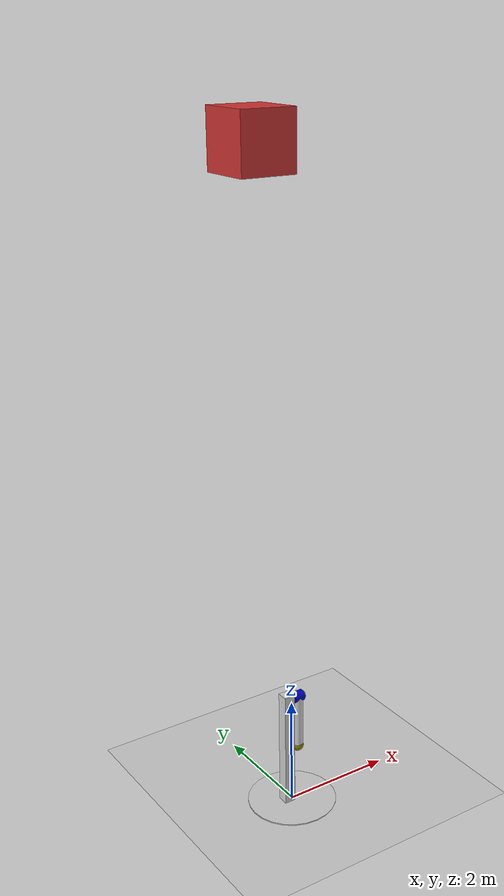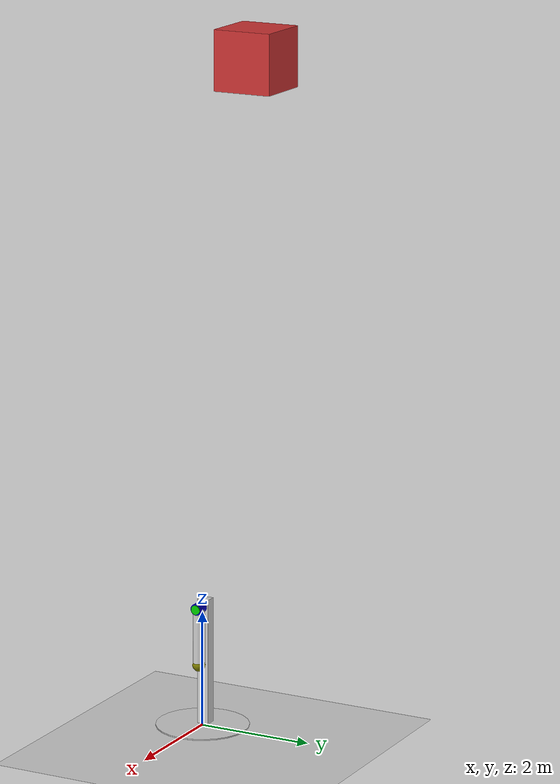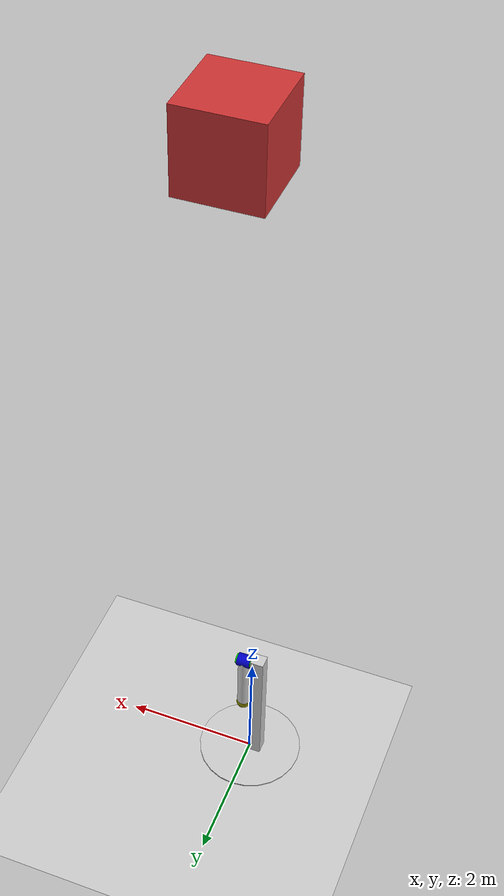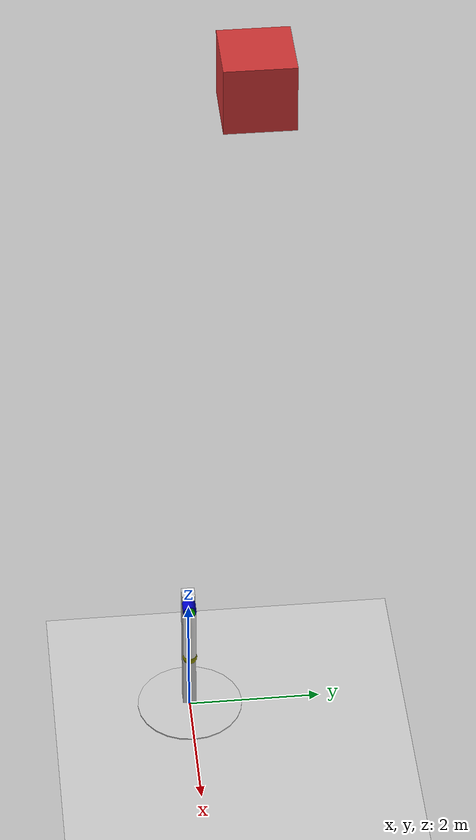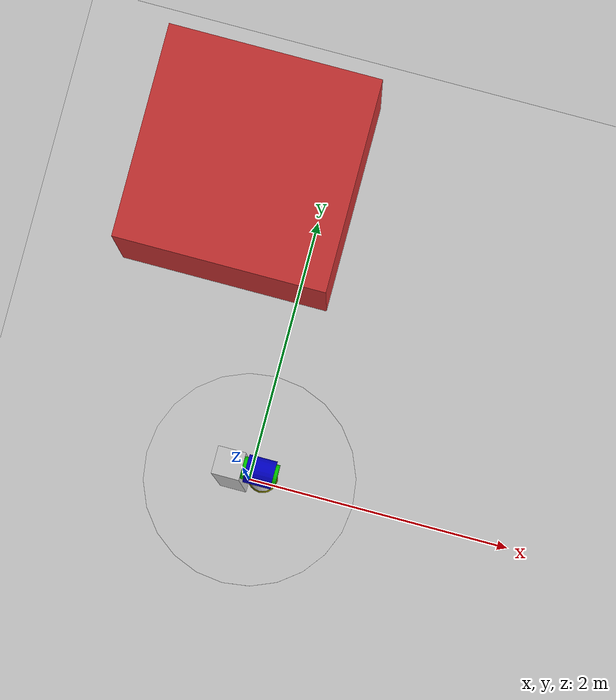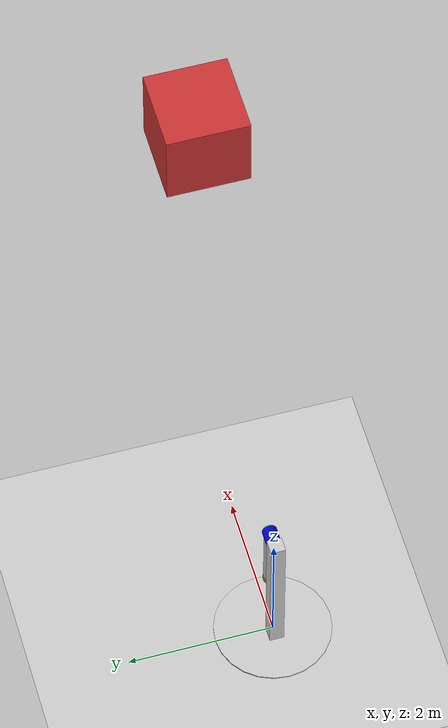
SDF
<?xml version="1.0" ?>
<sdf version="1.7">
  <world name="pendulum_joint_wrench">
    <light type="directional" name="sun">
      <cast_shadows>true</cast_shadows>
      <pose>0 0 10 0 0 0</pose>
      <diffuse>1 1 1 1</diffuse>
      <specular>0.5 0.5 0.5 1</specular>
      <attenuation>
        <range>1000</range>
        <constant>0.9</constant>
        <linear>0.01</linear>
        <quadratic>0.001</quadratic>
      </attenuation>
      <direction>-0.5 0.1 -0.9</direction>
    </light>

    <model name="ground_plane">
      <static>true</static>
      <link name="link">
        <collision name="collision">
          <geometry>
            <plane>
              <normal>0 0 1</normal>
              <size>100 100</size>
            </plane>
          </geometry>
        </collision>
        <visual name="visual">
          <geometry>
            <plane>
              <normal>0 0 1</normal>
              <size>100 100</size>
            </plane>
          </geometry>
          <material>
            <ambient>0.8 0.8 0.8 1</ambient>
            <diffuse>0.8 0.8 0.8 1</diffuse>
            <emissive>0.8 0.8 0.8 1</emissive>
          </material>
        </visual>
      </link>
    </model>

    <!-- Box used for contact force test. Initially positioned so that it doesn't collide with the pendulum -->
    <model name="box">
      <static>true</static>
      <pose>0.0 1 11.48 0 0 0</pose>
      <link name="box_link">
        <collision name="collision">
          <geometry>
            <box><size>1 1 1</size></box>
          </geometry>
          <surface>
            <friction>
              <ode>
                <mu>0.0</mu>
                <mu2>0.0</mu2>
              </ode>
            </friction>
          </surface>
        </collision>
        <visual name="visual">
          <geometry>
            <box><size>1 1 1</size></box>
          </geometry>
          <material>
            <ambient>0.8 0.2 0.2 1</ambient>
            <diffuse>0.8 0.2 0.2 1</diffuse>
            <emissive>0.8 0.2 0.2 1</emissive>
          </material>
        </visual>
      </link>
    </model>

    <model name="pendulum">
      <link name="base">
        <inertial>
          <mass>1000</mass>
        </inertial>
        <visual name="vis_plate_on_ground">
          <pose>0 0 0.01 0 0 0</pose>
          <geometry>
            <cylinder>
              <radius>0.8</radius>
              <length>0.02</length>
            </cylinder>
          </geometry>
          <material>
            <ambient>0.8 0.8 0.8 1</ambient>
            <diffuse>0.8 0.8 0.8 1</diffuse>
          </material>
        </visual>
        <visual name="vis_pole">
          <pose>-0.1 0 1.115 0 0 0</pose>
          <geometry>
            <box>
              <size>0.2 0.2 2.2</size>
            </box>
          </geometry>
          <material>
            <ambient>0.8 0.8 0.8 1</ambient>
            <diffuse>0.8 0.8 0.8 1</diffuse>
          </material>
        </visual>
        <!-- Using 4 spheres as contact points to ensure stable constraint force readings -->
        <collision name="col1">
          <pose>0.8 0 0.05  0 0 0</pose>
          <geometry>
            <sphere>
              <radius>0.05</radius>
            </sphere>
          </geometry>
        </collision>
        <collision name="col2">
          <pose>-0.8 0 0.05  0 0 0</pose>
          <geometry>
            <sphere>
              <radius>0.05</radius>
            </sphere>
          </geometry>
        </collision>
        <collision name="col3">
          <pose>0 0.8 0.05  0 0 0</pose>
          <geometry>
            <sphere>
              <radius>0.05</radius>
            </sphere>
          </geometry>
        </collision>
        <collision name="col4">
          <pose>0 -0.8 0.05  0 0 0</pose>
          <geometry>
            <sphere>
              <radius>0.05</radius>
            </sphere>
          </geometry>
        </collision>
      </link>

      <joint name="world_joint" type="fixed">
        <pose relative_to="base"/>
        <parent>world</parent>
        <child>base</child>
      </joint>

      <joint name="motor_joint" type="revolute">
        <parent>base</parent>
        <child>sensor_link</child>
        <axis>
          <xyz>0 0 1</xyz>
        </axis>
      </joint>

      <link name="sensor_link">
        <pose>0.125 0.0 2.1 0 1.5707963267948966 0</pose>
        <inertial>
          <mass>0.4</mass>
          <inertia>
            <ixx>0.01333</ixx>
            <iyy>0.01333</iyy>
            <izz>0.02</izz>
          </inertia>
        </inertial>
        <visual name="motor_viz">
          <geometry>
            <cylinder>
              <radius>0.08</radius>
              <length>0.25</length>
            </cylinder>
          </geometry>
          <material>
            <ambient>0.0 0.8 0.0 1</ambient>
            <diffuse>0.0 0.8 0.0 1</diffuse>
          </material>
        </visual>
      </link>

      <joint name="sensor_joint" type="fixed">
        <pose relative_to="motor_joint"/>
        <parent>sensor_link</parent>
        <child>arm</child>
      </joint>

      <link name="arm">
        <pose>0.125 0.0 1.6   0 0 0</pose>
        <inertial>
          <mass>6.0</mass>
          <inertia>
            <ixx>.515</ixx>
            <iyy>.515</iyy>
            <izz>.03</izz>
          </inertia>
        </inertial>

        <visual name="vis_upper_joint">
          <pose>0 0 0.5 0 1.5707963267948966 0</pose>
          <geometry>
            <cylinder>
              <radius>0.1</radius>
              <length>0.2</length>
            </cylinder>
          </geometry>
          <material>
            <ambient>0.0 0.0 0.8 1</ambient>
            <diffuse>0.0 0.0 0.8 1</diffuse>
          </material>
        </visual>
        <collision name="col_upper_joint">
          <pose>0 0 0.5 0 1.5707963267948966 0</pose>
          <geometry>
            <cylinder>
              <radius>0.1</radius>
              <length>0.3</length>
            </cylinder>
          </geometry>
        </collision>

        <visual name="vis_contact_sphere">
          <pose>0 0 -0.5   0 0 0</pose>
          <geometry>
            <sphere>
              <radius>0.11</radius>
            </sphere>
          </geometry>
          <material>
            <ambient>0.8 0.8 0.8 1</ambient>
            <diffuse>0.5 0.5 0.0 1</diffuse>
          </material>
        </visual>
        <collision name="col_contact_sphere">
          <pose>0 0 -0.5   0 0 0</pose>
          <geometry>
            <sphere>
              <radius>0.11</radius>
            </sphere>
          </geometry>
        </collision>

        <visual name="vis_cylinder">
          <geometry>
            <cylinder>
              <radius>0.1</radius>
              <length>1.0</length>
            </cylinder>
          </geometry>
          <material>
            <ambient>0.8 0.8 0.8 1</ambient>
            <diffuse>0.8 0.8 0.8 1</diffuse>
          </material>
        </visual>
        <collision name="col_cylinder">
          <geometry>
            <cylinder>
              <radius>0.1</radius>
              <length>1.0</length>
            </cylinder>
          </geometry>
        </collision>
      </link>
    </model>
  </world>
</sdf>
